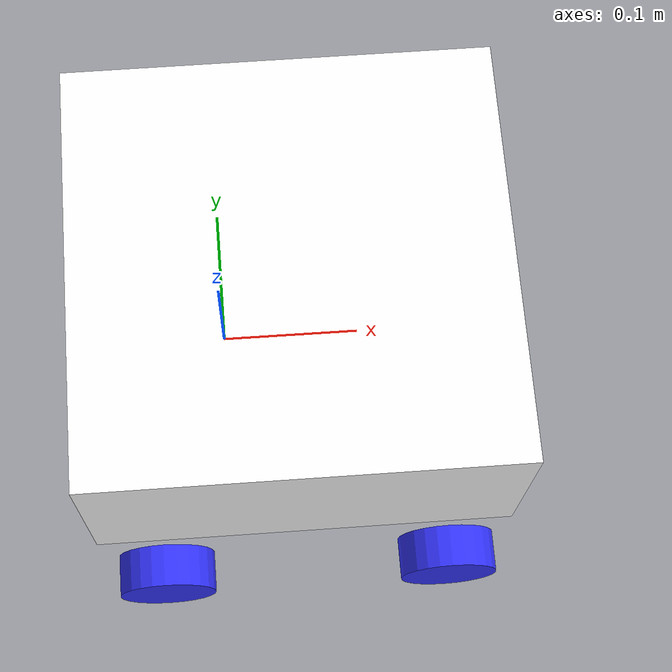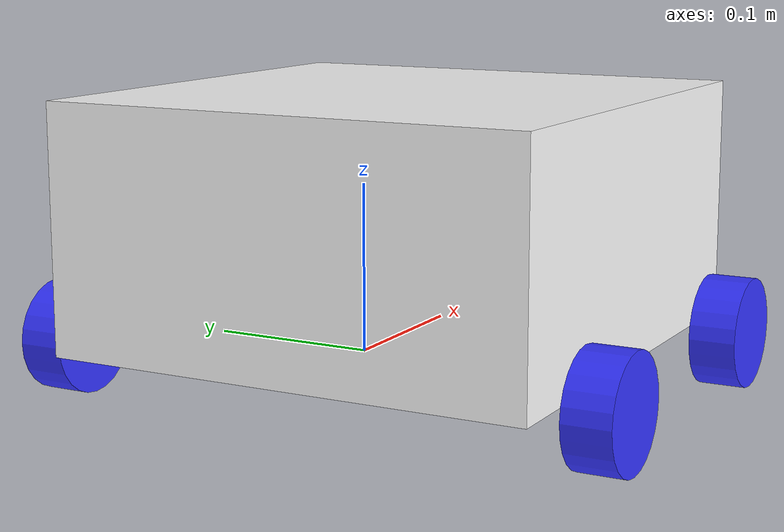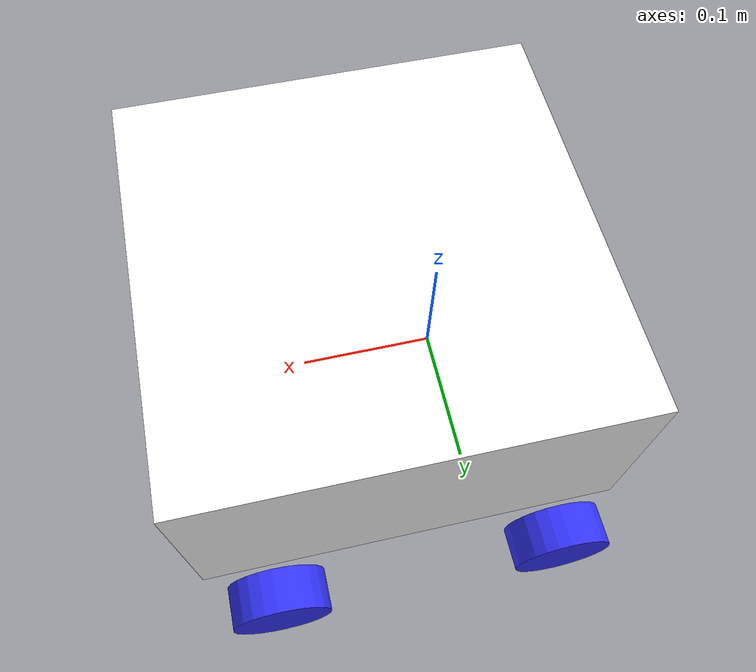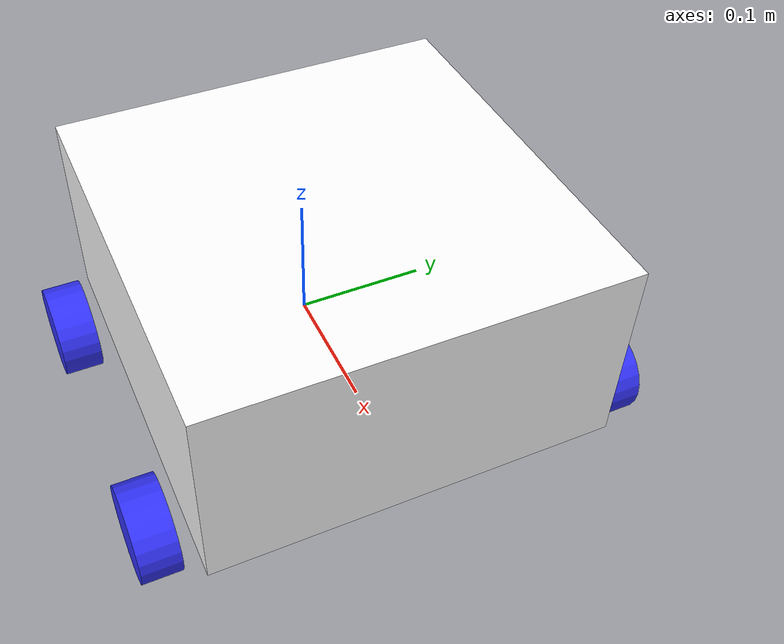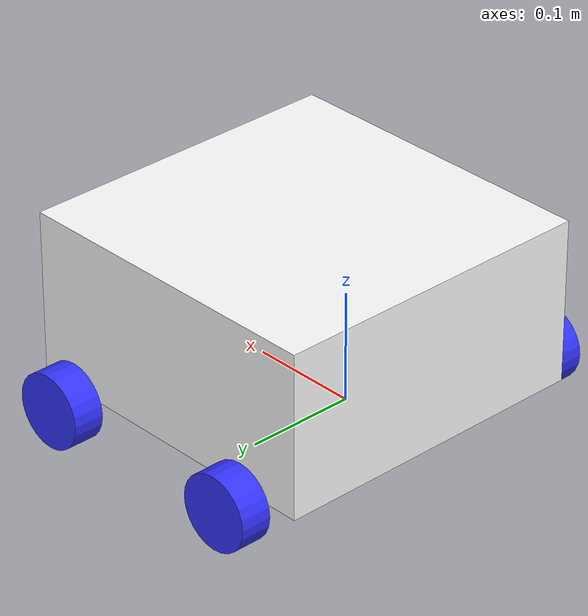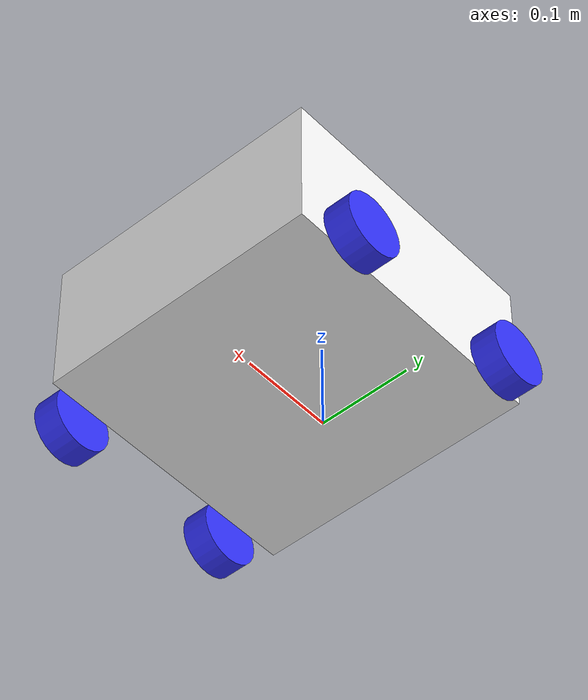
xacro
<?xml version="1.0"?>
<robot xmlns:xacro="http://www.ros.org/wiki/xacro">

    <xacro:include filename="inertial_macros.xacro"/>

    <material name="white">
        <color rgba= "1 1 1 1" />
    </material>

    <material name="orange">
        <color rgba= "1 0.3 0.1 1" />
    </material>

    <material name="blue">
        <color rgba= "0.2 0.2 1 1" />
    </material>

    <material name="black">
        <color rgba= "0 0 0 1" />
    </material>

    <!-- BASE LINK -->

    <link name="base_link">

    </link>

    <!-- CHASSIS LINK -->

    <joint name="chassis_joint" type="fixed">
        <parent link="base_link"/>
        <child link="chassis"/>
        <origin xyz="-0.1 0 0"/>
    </joint>

    <link name="chassis">
        <visual>
            <origin xyz="0.15 0 0.075"/>
            <geometry>
                <box size="0.3 0.3 0.15" />
            </geometry>
            <material name="white"/>
        </visual>
        <collision>
            <origin xyz="0.15 0 0.075"/>
            <geometry>
                <box size="0.3 0.3 0.15" />
            </geometry>
        </collision>
        <xacro:inertial_box mass="0.5" x="0.3" y="0.3" z="0.15">
            <origin xyz="0.15 0 0.075" rpy="0 0 0"/>
        </xacro:inertial_box>
    </link>

    <gazebo reference="chassis">
        <material>Gazebo/White</material>
    </gazebo>

    <!-- LEFT BACK WHEEL LINK -->

    <joint name="leftb_wheel_joint" type="continuous">
        <parent link="base_link"/>
        <child link="leftb_wheel"/>
        <origin xyz="-0.05 0.175 0" rpy = "-${pi/2} 0 0"/>
        <axis xyz="0 0 1"/>
    </joint>

    <link name="leftb_wheel">
        <visual>
            <geometry>
                <cylinder radius="0.034" length = "0.0285"/>
            </geometry>
            <material name="blue"/>
        </visual>
        <collision>
            <geometry>
                <cylinder radius="0.034" length = "0.0285"/>
            </geometry>
        </collision>
        <xacro:inertial_cylinder mass="0.3" length="0.0285" radius="0.034">
            <origin xyz="0 0 0" rpy="0 0 0"/>
        </xacro:inertial_cylinder>
    </link>

    <gazebo reference="leftb_wheel">
        <material>Gazebo/Blue</material>
    </gazebo>

    <!-- LEFT FRONT WHEEL LINK -->

    <joint name="leftf_wheel_joint" type="continuous">
        <parent link="base_link"/>
        <child link="leftf_wheel"/>
        <origin xyz="0.15 0.175 0" rpy = "-${pi/2} 0 0"/>
        <axis xyz="0 0 1"/>
    </joint>

    <link name="leftf_wheel">
        <visual>
            <geometry>
                <cylinder radius="0.034" length = "0.0285"/>
            </geometry>
            <material name="blue"/>
        </visual>
        <collision>
            <geometry>
                <cylinder radius="0.034" length = "0.0285"/>
            </geometry>
        </collision>
        <xacro:inertial_cylinder mass="0.3" length="0.0285" radius="0.034">
            <origin xyz="0 0 0" rpy="0 0 0"/>
        </xacro:inertial_cylinder>
    </link>

    <gazebo reference="leftf_wheel">
        <material>Gazebo/Blue</material>
    </gazebo>

        <!-- RIGHT FRONT WHEEL LINK -->

    <joint name="rightf_wheel_joint" type="continuous">
        <parent link="base_link"/>
        <child link="rightf_wheel"/>
        <origin xyz="0.15 -0.175 0" rpy = "${pi/2} 0 0"/>
        <axis xyz="0 0 -1"/>
    </joint>

    <link name="rightf_wheel">
        <visual>
            <geometry>
                <cylinder radius="0.034" length = "0.0285"/>
            </geometry>
            <material name="blue"/>
        </visual>
        <collision>
            <geometry>
                <cylinder radius="0.034" length = "0.0285"/>
            </geometry>
        </collision>
        <xacro:inertial_cylinder mass="0.3" length="0.0285" radius="0.034">
            <origin xyz="0 0 0" rpy="0 0 0"/>
        </xacro:inertial_cylinder>
    </link>

    <gazebo reference="rightf_wheel">
        <material>Gazebo/Blue</material>
    </gazebo>

            <!-- RIGHT BACK WHEEL LINK -->

    <joint name="rightb_wheel_joint" type="continuous">
        <parent link="base_link"/>
        <child link="rightb_wheel"/>
        <origin xyz="-0.05 -0.175 0" rpy = "${pi/2} 0 0"/>
        <axis xyz="0 0 -1"/>
    </joint>

    <link name="rightb_wheel">
        <visual>
            <geometry>
                <cylinder radius="0.034" length = "0.0285"/>
            </geometry>
            <material name="blue"/>
        </visual>
        <collision>
            <geometry>
                <cylinder radius="0.034" length = "0.0285"/>
            </geometry>
        </collision>
        <xacro:inertial_cylinder mass="0.3" length="0.0285" radius="0.034">
            <origin xyz="0 0 0" rpy="0 0 0"/>
        </xacro:inertial_cylinder>
    </link>

    <gazebo reference="rightb_wheel">
        <material>Gazebo/Blue</material>
    </gazebo>
</robot>
